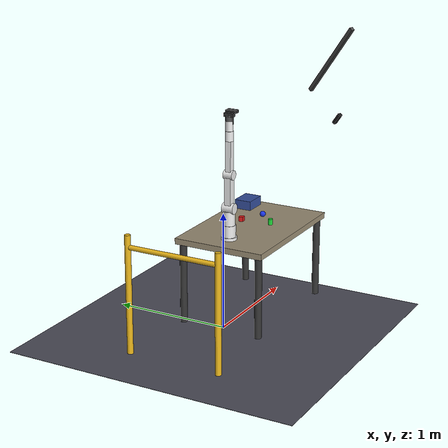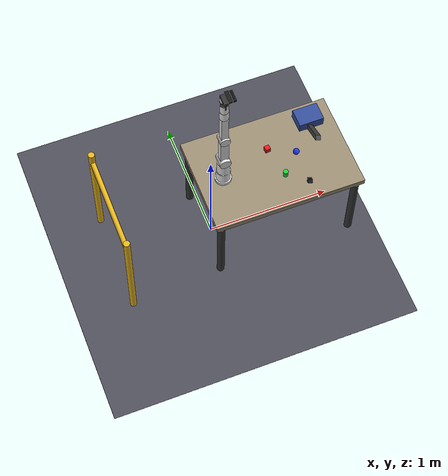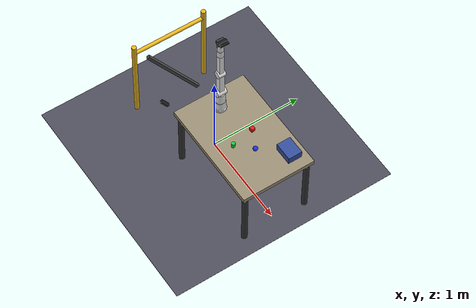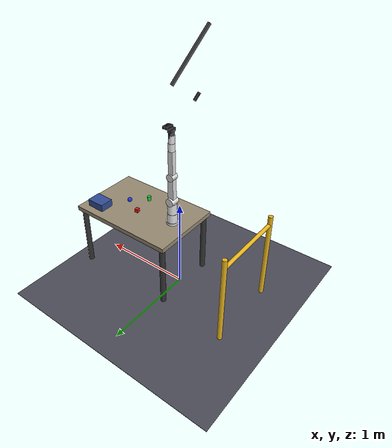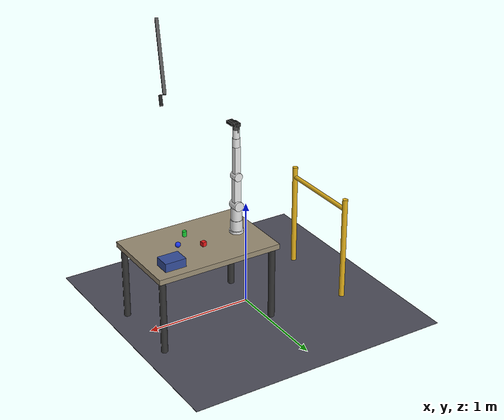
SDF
<?xml version="1.0" ?>
<sdf version="1.8">
  <world name="work_cell">

    <!-- Physics settings -->
    <physics name="1ms" type="ignored">
      <max_step_size>0.001</max_step_size>
      <real_time_factor>1.0</real_time_factor>
    </physics>

    <!-- Required plugins -->
    <plugin filename="gz-sim-physics-system" name="gz::sim::systems::Physics"/>
    <plugin filename="gz-sim-sensors-system" name="gz::sim::systems::Sensors">
      <render_engine>ogre</render_engine>
    </plugin>
    <plugin filename="gz-sim-scene-broadcaster-system" name="gz::sim::systems::SceneBroadcaster"/>

    <!-- ==================== LIGHTING ==================== -->

    <!-- Overhead industrial lighting -->
    <light type="directional" name="overhead_light">
      <cast_shadows>true</cast_shadows>
      <pose>0 0 3 0 0 0</pose>
      <diffuse>0.9 0.9 0.9 1</diffuse>
      <specular>0.3 0.3 0.3 1</specular>
      <direction>0 0 -1</direction>
    </light>

    <!-- Fill light -->
    <light type="directional" name="fill_light">
      <cast_shadows>false</cast_shadows>
      <pose>2 2 2 0 0 0</pose>
      <diffuse>0.4 0.4 0.4 1</diffuse>
      <direction>-0.5 -0.5 -0.5</direction>
    </light>

    <!-- ==================== WORK CELL STRUCTURE ==================== -->

    <!-- Floor (2.5m x 2.5m work cell) -->
    <model name="floor">
      <static>true</static>
      <pose>0 0 0 0 0 0</pose>
      <link name="link">
        <collision name="collision">
          <geometry>
            <plane>
              <normal>0 0 1</normal>
              <size>2.5 2.5</size>
            </plane>
          </geometry>
        </collision>
        <visual name="visual">
          <geometry>
            <plane>
              <normal>0 0 1</normal>
              <size>2.5 2.5</size>
            </plane>
          </geometry>
          <material>
            <ambient>0.3 0.3 0.35 1</ambient>
            <diffuse>0.3 0.3 0.35 1</diffuse>
          </material>
        </visual>
      </link>
    </model>

    <!-- Work table (1.2m x 0.8m, surface at 0.75m) -->
    <model name="work_table">
      <static>true</static>
      <pose>0.5 0 0 0 0 0</pose>
      <link name="table_top">
        <!-- Table surface at z=0.75m -->
        <collision name="collision">
          <pose>0 0 0.725 0 0 0</pose>
          <geometry>
            <box><size>1.2 0.8 0.05</size></box>
          </geometry>
          <surface>
            <friction>
              <ode><mu>0.8</mu></ode>
            </friction>
          </surface>
        </collision>
        <visual name="visual">
          <pose>0 0 0.725 0 0 0</pose>
          <geometry>
            <box><size>1.2 0.8 0.05</size></box>
          </geometry>
          <material>
            <ambient>0.6 0.55 0.45 1</ambient>
            <diffuse>0.6 0.55 0.45 1</diffuse>
          </material>
        </visual>
        <!-- Table legs (from floor to table bottom) -->
        <visual name="leg1">
          <pose>0.55 0.35 0.35 0 0 0</pose>
          <geometry><cylinder><radius>0.03</radius><length>0.7</length></cylinder></geometry>
          <material><ambient>0.2 0.2 0.2 1</ambient></material>
        </visual>
        <visual name="leg2">
          <pose>0.55 -0.35 0.35 0 0 0</pose>
          <geometry><cylinder><radius>0.03</radius><length>0.7</length></cylinder></geometry>
          <material><ambient>0.2 0.2 0.2 1</ambient></material>
        </visual>
        <visual name="leg3">
          <pose>-0.55 0.35 0.35 0 0 0</pose>
          <geometry><cylinder><radius>0.03</radius><length>0.7</length></cylinder></geometry>
          <material><ambient>0.2 0.2 0.2 1</ambient></material>
        </visual>
        <visual name="leg4">
          <pose>-0.55 -0.35 0.35 0 0 0</pose>
          <geometry><cylinder><radius>0.03</radius><length>0.7</length></cylinder></geometry>
          <material><ambient>0.2 0.2 0.2 1</ambient></material>
        </visual>
      </link>
    </model>

    <!-- ==================== UFFactory xArm 6 ==================== -->
    <!--
         UFFactory xArm 6 - 6-DOF robotic arm
         - Reach: 700mm
         - Payload: 6kg
         - Repeatability: ±0.1mm

         Mounted on work table at origin
    -->

    <!-- UFFactory xArm6 with gripper and RealSense D435 -->
    <!-- Mounted on table near the back edge -->
    <include>
      <uri>model://xarm6</uri>
      <name>xarm6</name>
      <pose>0.1 0 0.75 0 0 0</pose>
    </include>

    <!-- Mount arm to world (simulates bolting to table) -->
    <joint name="xarm6_mount" type="fixed">
      <parent>world</parent>
      <child>xarm6::link_base</child>
    </joint>

    <!-- ==================== OVERHEAD DEPTH CAMERA ==================== -->

    <model name="overhead_camera_mount">
      <static>true</static>
      <pose>0.4 -0.8 1.8 0 0.9 1.2</pose>  <!-- Angled view of work cell -->

      <!-- Camera housing -->
      <link name="camera_housing">
        <visual name="housing_visual">
          <geometry>
            <box><size>0.1 0.03 0.025</size></box>
          </geometry>
          <material>
            <ambient>0.1 0.1 0.1 1</ambient>
            <diffuse>0.1 0.1 0.1 1</diffuse>
          </material>
        </visual>

        <!-- RGB Camera Sensor (overhead view) -->
        <sensor name="overhead_rgb" type="camera">
          <always_on>1</always_on>
          <update_rate>30</update_rate>
          <topic>overhead_camera</topic>
          <camera>
            <horizontal_fov>1.518</horizontal_fov>  <!-- 87 degrees -->
            <image>
              <width>640</width>
              <height>480</height>
              <format>R8G8B8</format>
            </image>
            <clip>
              <near>0.2</near>
              <far>10.0</far>
            </clip>
          </camera>
        </sensor>
      </link>

      <!-- Mounting arm -->
      <link name="mount_arm">
        <pose>-0.3 0 0.35 0 -1.57 0</pose>
        <visual name="visual">
          <geometry>
            <box><size>0.03 0.03 0.7</size></box>
          </geometry>
          <material>
            <ambient>0.3 0.3 0.3 1</ambient>
          </material>
        </visual>
      </link>

      <joint name="mount_joint" type="fixed">
        <parent>mount_arm</parent>
        <child>camera_housing</child>
      </joint>
    </model>

    <!-- ==================== OBJECTS ON WORK SURFACE ==================== -->

    <!-- Parts bin -->
    <model name="parts_bin">
      <static>true</static>
      <pose>0.9 0.25 0.8 0 0 0</pose>
      <link name="link">
        <visual name="visual">
          <geometry>
            <box><size>0.2 0.15 0.08</size></box>
          </geometry>
          <material>
            <ambient>0.2 0.3 0.6 1</ambient>
            <diffuse>0.2 0.3 0.6 1</diffuse>
          </material>
        </visual>
        <collision name="collision">
          <geometry>
            <box><size>0.2 0.15 0.08</size></box>
          </geometry>
        </collision>
      </link>
    </model>

    <!-- Target object 1: Red cube (pick target) -->
    <model name="red_cube">
      <pose>0.5 0.1 0.79 0 0 0.1</pose>
      <link name="link">
        <inertial>
          <mass>0.1</mass>
          <inertia>
            <ixx>0.000017</ixx>
            <iyy>0.000017</iyy>
            <izz>0.000017</izz>
          </inertia>
        </inertial>
        <visual name="visual">
          <geometry>
            <box><size>0.04 0.04 0.04</size></box>
          </geometry>
          <material>
            <ambient>0.9 0.1 0.1 1</ambient>
            <diffuse>0.9 0.1 0.1 1</diffuse>
          </material>
        </visual>
        <collision name="collision">
          <geometry>
            <box><size>0.04 0.04 0.04</size></box>
          </geometry>
        </collision>
      </link>
    </model>

    <!-- Target object 2: Green cylinder -->
    <model name="green_cylinder">
      <pose>0.55 -0.15 0.79 0 0 0</pose>
      <link name="link">
        <inertial>
          <mass>0.08</mass>
          <inertia>
            <ixx>0.000012</ixx>
            <iyy>0.000012</iyy>
            <izz>0.000008</izz>
          </inertia>
        </inertial>
        <visual name="visual">
          <geometry>
            <cylinder><radius>0.02</radius><length>0.05</length></cylinder>
          </geometry>
          <material>
            <ambient>0.1 0.8 0.2 1</ambient>
            <diffuse>0.1 0.8 0.2 1</diffuse>
          </material>
        </visual>
        <collision name="collision">
          <geometry>
            <cylinder><radius>0.02</radius><length>0.05</length></cylinder>
          </geometry>
        </collision>
      </link>
    </model>

    <!-- Target object 3: Blue sphere -->
    <model name="blue_sphere">
      <pose>0.7 0 0.79 0 0 0</pose>
      <link name="link">
        <inertial>
          <mass>0.05</mass>
          <inertia>
            <ixx>0.000005</ixx>
            <iyy>0.000005</iyy>
            <izz>0.000005</izz>
          </inertia>
        </inertial>
        <visual name="visual">
          <geometry>
            <sphere><radius>0.025</radius></sphere>
          </geometry>
          <material>
            <ambient>0.1 0.2 0.9 1</ambient>
            <diffuse>0.1 0.2 0.9 1</diffuse>
          </material>
        </visual>
        <collision name="collision">
          <geometry>
            <sphere><radius>0.025</radius></sphere>
          </geometry>
        </collision>
      </link>
    </model>

    <!-- Obstacle: Safety barrier -->
    <model name="safety_barrier">
      <static>true</static>
      <pose>-0.8 0 0.5 0 0 0</pose>
      <link name="link">
        <visual name="post1">
          <pose>0 0.4 0 0 0 0</pose>
          <geometry>
            <cylinder><radius>0.025</radius><length>1.0</length></cylinder>
          </geometry>
          <material>
            <ambient>0.9 0.7 0.1 1</ambient>
          </material>
        </visual>
        <visual name="post2">
          <pose>0 -0.4 0 0 0 0</pose>
          <geometry>
            <cylinder><radius>0.025</radius><length>1.0</length></cylinder>
          </geometry>
          <material>
            <ambient>0.9 0.7 0.1 1</ambient>
          </material>
        </visual>
        <visual name="bar">
          <pose>0 0 0.4 1.57 0 0</pose>
          <geometry>
            <cylinder><radius>0.02</radius><length>0.8</length></cylinder>
          </geometry>
          <material>
            <ambient>0.9 0.7 0.1 1</ambient>
          </material>
        </visual>
        <collision name="collision">
          <pose>0 0 0.25 0 0 0</pose>
          <geometry>
            <box><size>0.05 0.85 1.0</size></box>
          </geometry>
        </collision>
      </link>
    </model>

  </world>
</sdf>

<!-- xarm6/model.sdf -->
<sdf version="1.9">
  <model name="xarm6">
    <static>false</static>

    <!-- Base Link (mounted to table) -->
    <link name="link_base">
      <inertial>
        <mass>2.0</mass>
        <inertia>
          <ixx>0.01</ixx><iyy>0.01</iyy><izz>0.01</izz>
        </inertia>
      </inertial>
      <visual name="base_visual">
        <geometry>
          <cylinder><radius>0.065</radius><length>0.05</length></cylinder>
        </geometry>
        <material>
          <ambient>0.9 0.9 0.9 1</ambient>
          <diffuse>0.9 0.9 0.9 1</diffuse>
        </material>
      </visual>
      <collision name="base_collision">
        <geometry>
          <cylinder><radius>0.065</radius><length>0.05</length></cylinder>
        </geometry>
      </collision>
    </link>

    <!-- Link 1: Shoulder rotation (267mm from base to joint 2) -->
    <link name="link1">
      <pose relative_to="joint1">0 0 0 0 0 0</pose>
      <inertial>
        <mass>2.5</mass>
        <pose>0 0 0.1 0 0 0</pose>
        <inertia>
          <ixx>0.02</ixx><iyy>0.02</iyy><izz>0.01</izz>
        </inertia>
      </inertial>
      <visual name="link1_housing">
        <pose>0 0 0.05 0 0 0</pose>
        <geometry>
          <cylinder><radius>0.055</radius><length>0.1</length></cylinder>
        </geometry>
        <material>
          <ambient>0.9 0.9 0.9 1</ambient>
          <diffuse>0.9 0.9 0.9 1</diffuse>
        </material>
      </visual>
      <visual name="link1_shoulder">
        <pose>0 0 0.16 0 0 0</pose>
        <geometry>
          <cylinder><radius>0.05</radius><length>0.12</length></cylinder>
        </geometry>
        <material>
          <ambient>0.9 0.9 0.9 1</ambient>
        </material>
      </visual>
      <collision name="link1_collision">
        <pose>0 0 0.1 0 0 0</pose>
        <geometry>
          <cylinder><radius>0.06</radius><length>0.2</length></cylinder>
        </geometry>
      </collision>
    </link>

    <joint name="joint1" type="revolute">
      <parent>link_base</parent>
      <child>link1</child>
      <pose relative_to="link_base">0 0 0.025 0 0 0</pose>
      <axis>
        <xyz>0 0 1</xyz>
        <limit>
          <lower>-6.28</lower>
          <upper>6.28</upper>
          <effort>50</effort>
          <velocity>3.14</velocity>
        </limit>
      </axis>
    </joint>

    <!-- Link 2: Upper arm (284.5mm) -->
    <link name="link2">
      <pose relative_to="joint2">0 0 0 0 0 0</pose>
      <inertial>
        <mass>1.8</mass>
        <pose>0 0 0.142 0 0 0</pose>
        <inertia>
          <ixx>0.03</ixx><iyy>0.03</iyy><izz>0.005</izz>
        </inertia>
      </inertial>
      <visual name="link2_joint">
        <pose>0 0 0 1.5708 0 0</pose>
        <geometry>
          <cylinder><radius>0.045</radius><length>0.1</length></cylinder>
        </geometry>
        <material>
          <ambient>0.9 0.9 0.9 1</ambient>
        </material>
      </visual>
      <visual name="link2_arm">
        <pose>0 0 0.142 0 0 0</pose>
        <geometry>
          <box><size>0.065 0.055 0.285</size></box>
        </geometry>
        <material>
          <ambient>0.9 0.9 0.9 1</ambient>
        </material>
      </visual>
      <collision name="link2_collision">
        <pose>0 0 0.142 0 0 0</pose>
        <geometry>
          <box><size>0.07 0.06 0.29</size></box>
        </geometry>
      </collision>
    </link>

    <joint name="joint2" type="revolute">
      <parent>link1</parent>
      <child>link2</child>
      <pose relative_to="link1">0 0 0.242 0 0 0</pose>
      <axis>
        <xyz>0 1 0</xyz>
        <limit>
          <lower>-2.06</lower>
          <upper>2.09</upper>
          <effort>50</effort>
          <velocity>3.14</velocity>
        </limit>
      </axis>
    </joint>

    <!-- Link 3: Forearm (284.5mm) -->
    <link name="link3">
      <pose relative_to="joint3">0 0 0 0 0 0</pose>
      <inertial>
        <mass>1.5</mass>
        <pose>0 0 0.142 0 0 0</pose>
        <inertia>
          <ixx>0.025</ixx><iyy>0.025</iyy><izz>0.004</izz>
        </inertia>
      </inertial>
      <visual name="link3_joint">
        <pose>0 0 0 1.5708 0 0</pose>
        <geometry>
          <cylinder><radius>0.04</radius><length>0.08</length></cylinder>
        </geometry>
        <material>
          <ambient>0.9 0.9 0.9 1</ambient>
        </material>
      </visual>
      <visual name="link3_arm">
        <pose>0 0 0.142 0 0 0</pose>
        <geometry>
          <box><size>0.055 0.05 0.285</size></box>
        </geometry>
        <material>
          <ambient>0.9 0.9 0.9 1</ambient>
        </material>
      </visual>
      <collision name="link3_collision">
        <pose>0 0 0.142 0 0 0</pose>
        <geometry>
          <box><size>0.06 0.055 0.29</size></box>
        </geometry>
      </collision>
    </link>

    <joint name="joint3" type="revolute">
      <parent>link2</parent>
      <child>link3</child>
      <pose relative_to="link2">0 0 0.2845 0 0 0</pose>
      <axis>
        <xyz>0 1 0</xyz>
        <limit>
          <lower>-3.93</lower>
          <upper>0.19</upper>
          <effort>32</effort>
          <velocity>3.14</velocity>
        </limit>
      </axis>
    </joint>

    <!-- Link 4: Wrist 1 (82mm) -->
    <link name="link4">
      <pose relative_to="joint4">0 0 0 0 0 0</pose>
      <inertial>
        <mass>1.2</mass>
        <pose>0 0 0.041 0 0 0</pose>
        <inertia>
          <ixx>0.008</ixx><iyy>0.008</iyy><izz>0.003</izz>
        </inertia>
      </inertial>
      <visual name="link4_visual">
        <pose>0 0 0.041 0 0 0</pose>
        <geometry>
          <cylinder><radius>0.035</radius><length>0.082</length></cylinder>
        </geometry>
        <material>
          <ambient>0.9 0.9 0.9 1</ambient>
        </material>
      </visual>
      <collision name="link4_collision">
        <pose>0 0 0.041 0 0 0</pose>
        <geometry>
          <cylinder><radius>0.04</radius><length>0.085</length></cylinder>
        </geometry>
      </collision>
    </link>

    <joint name="joint4" type="revolute">
      <parent>link3</parent>
      <child>link4</child>
      <pose relative_to="link3">0 0 0.2845 0 0 0</pose>
      <axis>
        <xyz>0 0 1</xyz>
        <limit>
          <lower>-6.28</lower>
          <upper>6.28</upper>
          <effort>20</effort>
          <velocity>3.14</velocity>
        </limit>
      </axis>
    </joint>

    <!-- Link 5: Wrist 2 (82mm) -->
    <link name="link5">
      <pose relative_to="joint5">0 0 0 0 0 0</pose>
      <inertial>
        <mass>1.0</mass>
        <pose>0 0 0.041 0 0 0</pose>
        <inertia>
          <ixx>0.006</ixx><iyy>0.006</iyy><izz>0.002</izz>
        </inertia>
      </inertial>
      <visual name="link5_visual">
        <pose>0 0 0.041 0 0 0</pose>
        <geometry>
          <cylinder><radius>0.032</radius><length>0.082</length></cylinder>
        </geometry>
        <material>
          <ambient>0.9 0.9 0.9 1</ambient>
        </material>
      </visual>
      <collision name="link5_collision">
        <pose>0 0 0.041 0 0 0</pose>
        <geometry>
          <cylinder><radius>0.035</radius><length>0.085</length></cylinder>
        </geometry>
      </collision>
    </link>

    <joint name="joint5" type="revolute">
      <parent>link4</parent>
      <child>link5</child>
      <pose relative_to="link4">0 0 0.082 0 0 0</pose>
      <axis>
        <xyz>0 1 0</xyz>
        <limit>
          <lower>-1.69</lower>
          <upper>3.14</upper>
          <effort>20</effort>
          <velocity>3.14</velocity>
        </limit>
      </axis>
    </joint>

    <!-- Link 6: Wrist 3 / Flange (42mm to flange surface) -->
    <link name="link6">
      <pose relative_to="joint6">0 0 0 0 0 0</pose>
      <inertial>
        <mass>0.5</mass>
        <pose>0 0 0.021 0 0 0</pose>
        <inertia>
          <ixx>0.002</ixx><iyy>0.002</iyy><izz>0.001</izz>
        </inertia>
      </inertial>
      <visual name="link6_visual">
        <pose>0 0 0.021 0 0 0</pose>
        <geometry>
          <cylinder><radius>0.03</radius><length>0.042</length></cylinder>
        </geometry>
        <material>
          <ambient>0.3 0.3 0.3 1</ambient>
          <diffuse>0.3 0.3 0.3 1</diffuse>
        </material>
      </visual>
      <visual name="flange">
        <pose>0 0 0.045 0 0 0</pose>
        <geometry>
          <cylinder><radius>0.035</radius><length>0.008</length></cylinder>
        </geometry>
        <material>
          <ambient>0.5 0.5 0.5 1</ambient>
        </material>
      </visual>
      <collision name="link6_collision">
        <pose>0 0 0.025 0 0 0</pose>
        <geometry>
          <cylinder><radius>0.035</radius><length>0.05</length></cylinder>
        </geometry>
      </collision>
    </link>

    <joint name="joint6" type="revolute">
      <parent>link5</parent>
      <child>link6</child>
      <pose relative_to="link5">0 0 0.082 0 0 0</pose>
      <axis>
        <xyz>0 0 1</xyz>
        <limit>
          <lower>-6.28</lower>
          <upper>6.28</upper>
          <effort>20</effort>
          <velocity>3.14</velocity>
        </limit>
      </axis>
    </joint>

    <!-- ==================== GRIPPER ==================== -->

    <!-- Gripper base attached to link6 flange -->
    <link name="gripper_base">
      <pose relative_to="gripper_joint">0 0 0 0 0 0</pose>
      <inertial>
        <mass>0.3</mass>
        <inertia>
          <ixx>0.001</ixx><iyy>0.001</iyy><izz>0.001</izz>
        </inertia>
      </inertial>
      <visual name="base_visual">
        <geometry>
          <box><size>0.04 0.08 0.03</size></box>
        </geometry>
        <material>
          <ambient>0.2 0.2 0.2 1</ambient>
          <diffuse>0.2 0.2 0.2 1</diffuse>
        </material>
      </visual>
      <!-- Camera mount bracket -->
      <visual name="camera_mount">
        <pose>0.03 0 0.02 0 0 0</pose>
        <geometry>
          <box><size>0.03 0.09 0.025</size></box>
        </geometry>
        <material>
          <ambient>0.1 0.1 0.1 1</ambient>
        </material>
      </visual>
      <collision name="gripper_collision">
        <geometry>
          <box><size>0.04 0.08 0.03</size></box>
        </geometry>
      </collision>

      <!-- Intel RealSense D435 (wrist-mounted) -->
      <visual name="realsense_d435">
        <pose>0.06 0 0.02 0 0 0</pose>
        <geometry>
          <box><size>0.025 0.09 0.025</size></box>
        </geometry>
        <material>
          <ambient>0.05 0.05 0.05 1</ambient>
          <diffuse>0.05 0.05 0.05 1</diffuse>
        </material>
      </visual>

      <sensor name="wrist_d435" type="rgbd_camera">
        <pose>0.07 0 0.02 0 0.4 0</pose>  <!-- Angled down toward work surface -->
        <always_on>1</always_on>
        <update_rate>30</update_rate>
        <topic>wrist_camera</topic>
        <camera>
          <horizontal_fov>1.518</horizontal_fov>  <!-- 87 degrees (D435 depth FOV) -->
          <image>
            <width>640</width>
            <height>480</height>
            <format>R8G8B8</format>
          </image>
          <clip>
            <near>0.2</near>
            <far>10.0</far>
          </clip>
          <depth_camera>
            <clip>
              <near>0.2</near>
              <far>10.0</far>
            </clip>
          </depth_camera>
        </camera>
      </sensor>
    </link>

    <joint name="gripper_joint" type="fixed">
      <parent>link6</parent>
      <child>gripper_base</child>
      <pose relative_to="link6">0 0 0.05 0 0 0</pose>
    </joint>

    <!-- Left finger -->
    <link name="left_finger">
      <pose relative_to="left_finger_joint">0 0 0 0 0 0</pose>
      <inertial>
        <mass>0.05</mass>
        <inertia>
          <ixx>0.0001</ixx><iyy>0.0001</iyy><izz>0.0001</izz>
        </inertia>
      </inertial>
      <visual name="finger_visual">
        <pose>0 0 -0.03 0 0 0</pose>
        <geometry>
          <box><size>0.01 0.012 0.06</size></box>
        </geometry>
        <material>
          <ambient>0.4 0.4 0.4 1</ambient>
        </material>
      </visual>
      <collision name="finger_collision">
        <pose>0 0 -0.03 0 0 0</pose>
        <geometry>
          <box><size>0.01 0.012 0.06</size></box>
        </geometry>
      </collision>
    </link>

    <joint name="left_finger_joint" type="prismatic">
      <parent>gripper_base</parent>
      <child>left_finger</child>
      <pose relative_to="gripper_base">0 0.03 -0.015 0 0 0</pose>
      <axis>
        <xyz>0 1 0</xyz>
        <limit>
          <lower>0</lower>
          <upper>0.02</upper>
          <effort>20</effort>
          <velocity>0.1</velocity>
        </limit>
      </axis>
    </joint>

    <!-- Right finger -->
    <link name="right_finger">
      <pose relative_to="right_finger_joint">0 0 0 0 0 0</pose>
      <inertial>
        <mass>0.05</mass>
        <inertia>
          <ixx>0.0001</ixx><iyy>0.0001</iyy><izz>0.0001</izz>
        </inertia>
      </inertial>
      <visual name="finger_visual">
        <pose>0 0 -0.03 0 0 0</pose>
        <geometry>
          <box><size>0.01 0.012 0.06</size></box>
        </geometry>
        <material>
          <ambient>0.4 0.4 0.4 1</ambient>
        </material>
      </visual>
      <collision name="finger_collision">
        <pose>0 0 -0.03 0 0 0</pose>
        <geometry>
          <box><size>0.01 0.012 0.06</size></box>
        </geometry>
      </collision>
    </link>

    <joint name="right_finger_joint" type="prismatic">
      <parent>gripper_base</parent>
      <child>right_finger</child>
      <pose relative_to="gripper_base">0 -0.03 -0.015 0 0 0</pose>
      <axis>
        <xyz>0 -1 0</xyz>
        <limit>
          <lower>0</lower>
          <upper>0.02</upper>
          <effort>20</effort>
          <velocity>0.1</velocity>
        </limit>
      </axis>
    </joint>

    <!-- Tool frame (tip of gripper fingers) -->
    <frame name="tool_frame" attached_to="gripper_base">
      <pose>0 0 -0.06 0 0 0</pose>
    </frame>

    <!-- ==================== JOINT CONTROLLERS ==================== -->
    <!-- Position controllers for each joint to enable position control -->

    <plugin filename="gz-sim-joint-position-controller-system"
            name="gz::sim::systems::JointPositionController">
      <joint_name>joint1</joint_name>
      <initial_position>0</initial_position>
      <p_gain>100</p_gain>
      <i_gain>0.1</i_gain>
      <d_gain>10</d_gain>
    </plugin>

    <plugin filename="gz-sim-joint-position-controller-system"
            name="gz::sim::systems::JointPositionController">
      <joint_name>joint2</joint_name>
      <initial_position>-0.6</initial_position>
      <p_gain>100</p_gain>
      <i_gain>0.1</i_gain>
      <d_gain>10</d_gain>
    </plugin>

    <plugin filename="gz-sim-joint-position-controller-system"
            name="gz::sim::systems::JointPositionController">
      <joint_name>joint3</joint_name>
      <initial_position>-1.2</initial_position>
      <p_gain>100</p_gain>
      <i_gain>0.1</i_gain>
      <d_gain>10</d_gain>
    </plugin>

    <plugin filename="gz-sim-joint-position-controller-system"
            name="gz::sim::systems::JointPositionController">
      <joint_name>joint4</joint_name>
      <initial_position>0</initial_position>
      <p_gain>50</p_gain>
      <i_gain>0.1</i_gain>
      <d_gain>5</d_gain>
    </plugin>

    <plugin filename="gz-sim-joint-position-controller-system"
            name="gz::sim::systems::JointPositionController">
      <joint_name>joint5</joint_name>
      <initial_position>-1.0</initial_position>
      <p_gain>50</p_gain>
      <i_gain>0.1</i_gain>
      <d_gain>5</d_gain>
    </plugin>

    <plugin filename="gz-sim-joint-position-controller-system"
            name="gz::sim::systems::JointPositionController">
      <joint_name>joint6</joint_name>
      <initial_position>0</initial_position>
      <p_gain>30</p_gain>
      <i_gain>0.1</i_gain>
      <d_gain>3</d_gain>
    </plugin>

    <!-- Gripper finger controllers -->
    <plugin filename="gz-sim-joint-position-controller-system"
            name="gz::sim::systems::JointPositionController">
      <joint_name>left_finger_joint</joint_name>
      <initial_position>0.01</initial_position>
      <p_gain>20</p_gain>
      <i_gain>0.1</i_gain>
      <d_gain>2</d_gain>
    </plugin>

    <plugin filename="gz-sim-joint-position-controller-system"
            name="gz::sim::systems::JointPositionController">
      <joint_name>right_finger_joint</joint_name>
      <initial_position>0.01</initial_position>
      <p_gain>20</p_gain>
      <i_gain>0.1</i_gain>
      <d_gain>2</d_gain>
    </plugin>

  </model>
</sdf>
